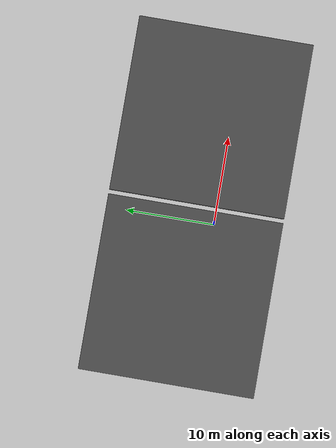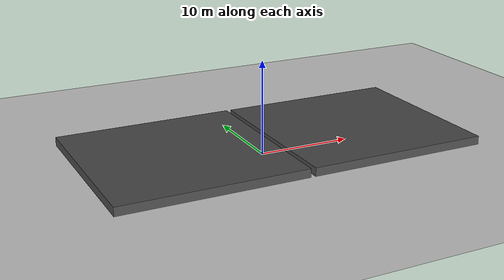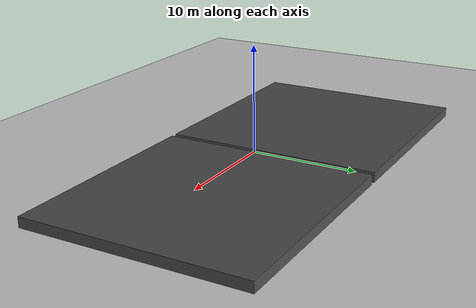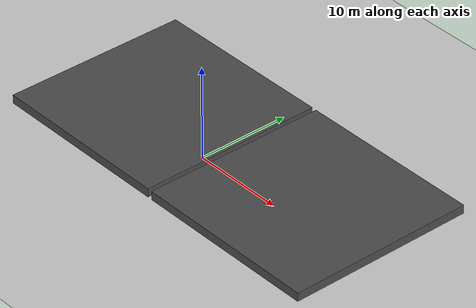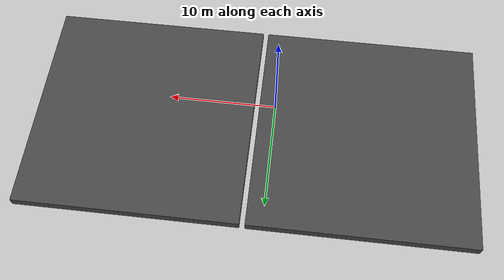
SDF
<sdf version="1.6">
 <world name="default">
  <light name="sun" type="directional">
   <pose>0 0 10 0 -0 0</pose>
   <diffuse>0.8 0.8 0.8 1</diffuse>
   <specular>0.1 0.1 0.1 1</specular>
   <attenuation>
    <range>1000</range>
    <constant>0.9</constant>
    <linear>0.01</linear>
    <quadratic>0.001</quadratic>
   </attenuation>
   <direction>-0.5 0.5 -1</direction>
  </light>
  <model name="ground_plane">
   <static>1</static>
   <link name="link">
    <collision name="collision">
     <geometry><plane><normal>0 0 1</normal><size>100 100</size></plane></geometry>
     <surface><friction><ode><mu>100</mu><mu2>50</mu2></ode></friction></surface>
    </collision>
    <visual name="visual">
     <cast_shadows>0</cast_shadows>
     <geometry><plane><normal>0 0 1</normal><size>100 100</size></plane></geometry>
     <material>
      <script><uri>file://media/materials/scripts/gazebo.material</uri><name>Gazebo/Grey</name></script>
     </material>
    </visual>
   </link>
  </model>
  <gravity>0 0 -9.8</gravity>
  <magnetic_field>6e-06 2.3e-05 -4.2e-05</magnetic_field>
  <atmosphere type="adiabatic"/>
  <physics name="default_physics" default="0" type="ode">
   <max_step_size>0.001</max_step_size>
   <real_time_factor>1</real_time_factor>
   <real_time_update_rate>1000</real_time_update_rate>
  </physics>
  <scene><ambient>0.4 0.4 0.4 1</ambient><background>0.7 0.7 0.7 1</background><shadows>1</shadows></scene>
  <spherical_coordinates>
   <surface_model>EARTH_WGS84</surface_model>
   <latitude_deg>0</latitude_deg>
   <longitude_deg>0</longitude_deg>
   <elevation>0</elevation>
   <heading_deg>0</heading_deg>
  </spherical_coordinates>
  <model name="asphalt_plane">
   <static>1</static>
   <link name="link">
    <collision name="collision">
     <geometry><box><size>20 20 1.4296</size></box></geometry>
     <surface><friction><ode><mu>100</mu><mu2>50</mu2></ode></friction></surface>
    </collision>
    <visual name="visual">
     <cast_shadows>0</cast_shadows>
     <geometry><box><size>20 20 1.4296</size></box></geometry>
     <material>
      <script>
       <uri>model://asphalt_plane/materials/scripts</uri>
       <uri>model://asphalt_plane/materials/textures</uri>
       <name>vrc/asphalt</name>
      </script>
     </material>
    </visual>
   </link>
   <pose>-8.53833 2.29833 0.165376 0 -0 0</pose>
  </model>
  <model name="asphalt_plane_clone">
   <static>1</static>
   <link name="link">
    <collision name="collision">
     <geometry><box><size>20 20 1.06472</size></box></geometry>
     <surface><friction><ode><mu>100</mu><mu2>50</mu2></ode></friction></surface>
    </collision>
    <visual name="visual">
     <cast_shadows>0</cast_shadows>
     <geometry><box><size>20 20 1.06472</size></box></geometry>
     <material>
      <script>
       <uri>model://asphalt_plane/materials/scripts</uri>
       <uri>model://asphalt_plane/materials/textures</uri>
       <name>vrc/asphalt</name>
      </script>
     </material>
    </visual>
   </link>
   <pose>11.9689 2.28539 0.340279 0 -0 0</pose>
  </model>
 </world>
</sdf>
